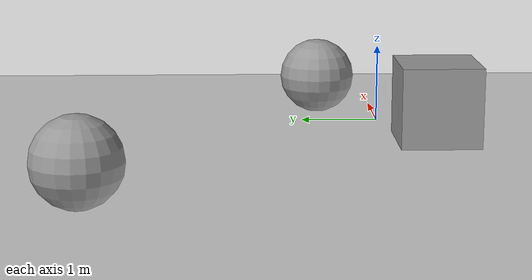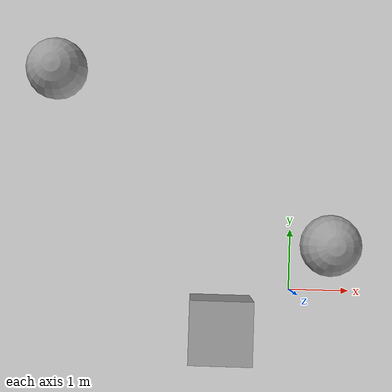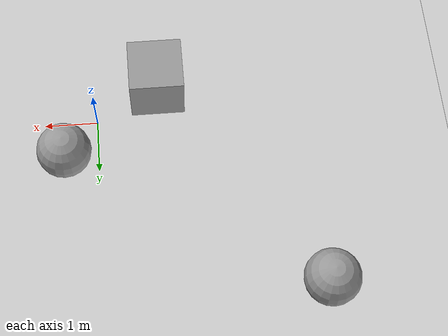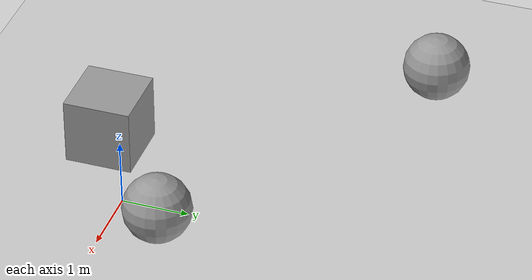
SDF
<?xml version="1.0"?>
<sdf version="1.6">
  <world name="default">
    <plugin
      filename="gz-sim-physics-system"
      name="gz::sim::systems::Physics">
    </plugin>
    <plugin
      filename="gz-sim-user-commands-system"
      name="gz::sim::systems::UserCommands">
    </plugin>
    <plugin
      filename="gz-sim-scene-broadcaster-system"
      name="gz::sim::systems::SceneBroadcaster">
    </plugin>
    <plugin
      filename="gz-sim-sensors-system"
      name="gz::sim::systems::Sensors">
      <render_engine>ogre2</render_engine>
    </plugin>
    <plugin
      filename="gz-sim-imu-system"
      name="gz::sim::systems::Imu">
    </plugin>

    <include>
      <uri>
        https://fuel.gazebosim.org/1.0/OpenRobotics/models/Ground Plane
      </uri>
    </include>

    <include>
      <uri>
        https://fuel.gazebosim.org/1.0/OpenRobotics/models/Sun
      </uri>
    </include>

    <scene>
      <shadows>false</shadows>
    </scene>

     <model name='unit_sphere'>
      <pose>0.593763 0.766069 0.5 0 -0 0</pose>
      <link name='link'>
        <inertial>
          <mass>1</mass>
          <inertia>
            <ixx>0.1</ixx>
            <ixy>0</ixy>
            <ixz>0</ixz>
            <iyy>0.1</iyy>
            <iyz>0</iyz>
            <izz>0.1</izz>
          </inertia>
          <pose>0 0 0 0 -0 0</pose>
        </inertial>
        <collision name='collision'>
          <geometry>
            <sphere>
              <radius>0.5</radius>
            </sphere>
          </geometry>
          <max_contacts>10</max_contacts>
          <surface>
            <contact>
              <ode/>
            </contact>
            <bounce/>
            <friction>
              <torsional>
                <ode/>
              </torsional>
              <ode/>
            </friction>
          </surface>
        </collision>
        <visual name='visual'>
          <geometry>
            <sphere>
              <radius>0.5</radius>
            </sphere>
          </geometry>
          <material>
            <script>
              <name>Gazebo/Grey</name>
              <uri>file://media/materials/scripts/gazebo.material</uri>
            </script>
          </material>
        </visual>
        <self_collide>0</self_collide>
        <enable_wind>0</enable_wind>
        <kinematic>0</kinematic>
      </link>
    </model>
    <model name='unit_box'>
      <pose>-1.15898 -0.625035 0.5 0 -0 0</pose>
      <link name='link'>
        <inertial>
          <mass>1</mass>
          <inertia>
            <ixx>0.166667</ixx>
            <ixy>0</ixy>
            <ixz>0</ixz>
            <iyy>0.166667</iyy>
            <iyz>0</iyz>
            <izz>0.166667</izz>
          </inertia>
          <pose>0 0 0 0 -0 0</pose>
        </inertial>
        <collision name='collision'>
          <geometry>
            <box>
              <size>1 1 1</size>
            </box>
          </geometry>
          <max_contacts>10</max_contacts>
          <surface>
            <contact>
              <ode/>
            </contact>
            <bounce/>
            <friction>
              <torsional>
                <ode/>
              </torsional>
              <ode/>
            </friction>
          </surface>
        </collision>
        <visual name='visual'>
          <geometry>
            <box>
              <size>1 1 1</size>
            </box>
          </geometry>
          <material>
            <script>
              <name>Gazebo/Grey</name>
              <uri>file://media/materials/scripts/gazebo.material</uri>
            </script>
          </material>
        </visual>
        <self_collide>0</self_collide>
        <enable_wind>0</enable_wind>
        <kinematic>0</kinematic>
      </link>
    </model>
    <model name='unit_sphere_0'>
      <pose>-3.93995 3.51098 0.5 0 -0 0</pose>
      <link name='link'>
        <inertial>
          <mass>1</mass>
          <inertia>
            <ixx>0.1</ixx>
            <ixy>0</ixy>
            <ixz>0</ixz>
            <iyy>0.1</iyy>
            <iyz>0</iyz>
            <izz>0.1</izz>
          </inertia>
          <pose>0 0 0 0 -0 0</pose>
        </inertial>
        <collision name='collision'>
          <geometry>
            <sphere>
              <radius>0.5</radius>
            </sphere>
          </geometry>
          <max_contacts>10</max_contacts>
          <surface>
            <contact>
              <ode/>
            </contact>
            <bounce/>
            <friction>
              <torsional>
                <ode/>
              </torsional>
              <ode/>
            </friction>
          </surface>
        </collision>
        <visual name='visual'>
          <geometry>
            <sphere>
              <radius>0.5</radius>
            </sphere>
          </geometry>
          <material>
            <script>
              <name>Gazebo/Grey</name>
              <uri>file://media/materials/scripts/gazebo.material</uri>
            </script>
          </material>
        </visual>
        <self_collide>0</self_collide>
        <enable_wind>0</enable_wind>
        <kinematic>0</kinematic>
      </link>
    </model>

    <gui fullscreen='0'>
      <camera name='user_camera'>
        <pose frame=''>0.319654 -0.235002 9.29441 0 1.5138 0.009599</pose>
        <view_controller>orbit</view_controller>
        <projection_type>perspective</projection_type>
      </camera>
    </gui>

    <physics type="ode">
      <real_time_update_rate>1000.0</real_time_update_rate>
      <max_step_size>0.001</max_step_size>
      <real_time_factor>1</real_time_factor>
      <ode>
        <solver>
          <type>quick</type>
          <iters>150</iters>
          <precon_iters>0</precon_iters>
          <sor>1.400000</sor>
          <use_dynamic_moi_rescaling>1</use_dynamic_moi_rescaling>
        </solver>
        <constraints>
          <cfm>0.00001</cfm>
          <erp>0.2</erp>
          <contact_max_correcting_vel>2000.000000</contact_max_correcting_vel>
          <contact_surface_layer>0.01000</contact_surface_layer>
        </constraints>
      </ode>
    </physics>

  </world>
</sdf>
